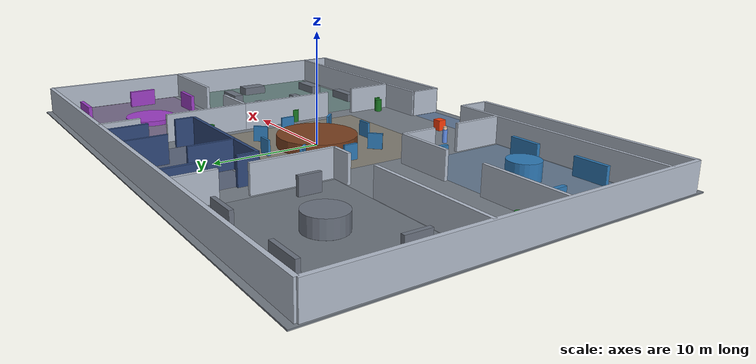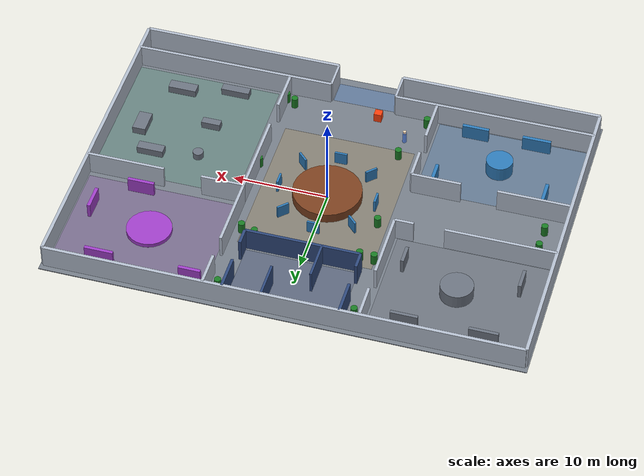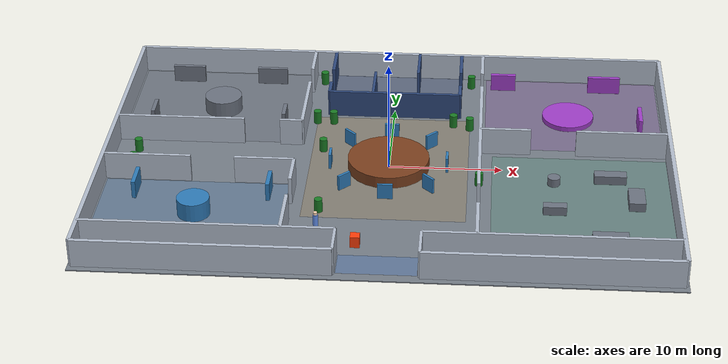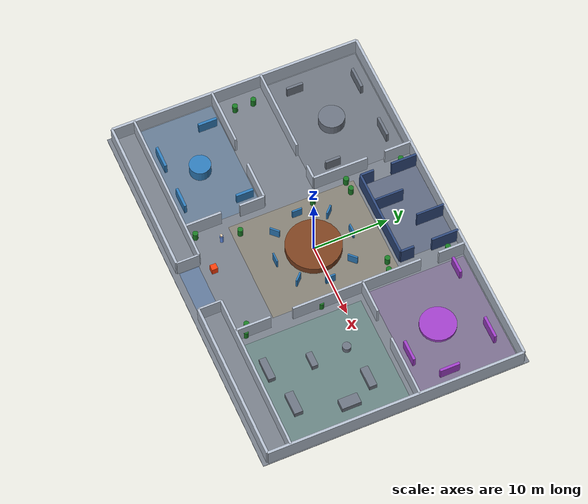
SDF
<?xml version='1.0' encoding='utf-8'?>
<sdf version="1.10">
  <world name="showroom">
    <physics name="showroom_physics" type="ignored">
      <max_step_size>0.005</max_step_size>
      <real_time_factor>1.0</real_time_factor>
      <real_time_update_rate>200</real_time_update_rate>
    </physics>
    <gravity>0 0 -9.8</gravity>
    <plugin filename="gz-sim-physics-system" name="gz::sim::systems::Physics" />
    <plugin filename="gz-sim-user-commands-system" name="gz::sim::systems::UserCommands" />
    <plugin filename="gz-sim-scene-broadcaster-system" name="gz::sim::systems::SceneBroadcaster" />
    <plugin filename="gz-sim-sensors-system" name="gz::sim::systems::Sensors">
      <render_engine>ogre2</render_engine>
    </plugin>
    <scene>
      <ambient>0.52 0.54 0.58 1</ambient>
      <background>0.08 0.10 0.14 1</background>
      <shadows>true</shadows>
    </scene>
    <light name="sun" type="directional">
      <pose>0 0 12 0 0 0</pose>
      <cast_shadows>true</cast_shadows>
      <intensity>0.85</intensity>
      <direction>-0.3 0.2 -0.9</direction>
    </light>
    <model name="showroom_structure">
      <static>true</static>
      <link name="structure">
        <collision name="floor_collision">
          <pose>0.000 0.000 -0.050 0 0 0.000000</pose>
          <geometry>
            <box>
              <size>50.000 35.000 0.100</size>
            </box>
          </geometry>
        </collision>
        <visual name="floor_visual">
          <pose>0.000 0.000 -0.050 0 0 0.000000</pose>
          <geometry>
            <box>
              <size>50.000 35.000 0.100</size>
            </box>
          </geometry>
          <material>
            <ambient>0.30 0.32 0.35 1</ambient>
            <diffuse>0.46 0.49 0.53 1</diffuse>
            <specular>0.08 0.08 0.08 1</specular>
          </material>
          <cast_shadows>false</cast_shadows>
        </visual>
        <visual name="zone_entrance_visual">
          <pose>0.000 -15.300 0.004 0 0 0.000000</pose>
          <geometry>
            <box>
              <size>6.600 2.600 0.006</size>
            </box>
          </geometry>
          <material>
            <ambient>0.20 0.45 0.80 0.28</ambient>
            <diffuse>0.20 0.45 0.80 0.28</diffuse>
            <specular>0.08 0.08 0.08 1</specular>
          </material>
          <cast_shadows>false</cast_shadows>
        </visual>
        <visual name="zone_vision_visual">
          <pose>-16.400 -8.500 0.004 0 0 0.000000</pose>
          <geometry>
            <box>
              <size>16.000 10.100 0.006</size>
            </box>
          </geometry>
          <material>
            <ambient>0.15 0.45 0.75 0.20</ambient>
            <diffuse>0.15 0.45 0.75 0.20</diffuse>
            <specular>0.08 0.08 0.08 1</specular>
          </material>
          <cast_shadows>false</cast_shadows>
        </visual>
        <visual name="zone_robotics_visual">
          <pose>-16.400 10.100 0.004 0 0 0.000000</pose>
          <geometry>
            <box>
              <size>16.000 12.800 0.006</size>
            </box>
          </geometry>
          <material>
            <ambient>0.34 0.36 0.40 0.20</ambient>
            <diffuse>0.34 0.36 0.40 0.20</diffuse>
            <specular>0.08 0.08 0.08 1</specular>
          </material>
          <cast_shadows>false</cast_shadows>
        </visual>
        <visual name="zone_history_visual">
          <pose>0.000 0.000 0.004 0 0 0.000000</pose>
          <geometry>
            <box>
              <size>14.000 17.000 0.006</size>
            </box>
          </geometry>
          <material>
            <ambient>0.76 0.55 0.18 0.16</ambient>
            <diffuse>0.76 0.55 0.18 0.16</diffuse>
            <specular>0.08 0.08 0.08 1</specular>
          </material>
          <cast_shadows>false</cast_shadows>
        </visual>
        <visual name="zone_tunnel_visual">
          <pose>0.000 13.000 0.004 0 0 0.000000</pose>
          <geometry>
            <box>
              <size>11.700 7.300 0.006</size>
            </box>
          </geometry>
          <material>
            <ambient>0.15 0.22 0.42 0.28</ambient>
            <diffuse>0.15 0.22 0.42 0.28</diffuse>
            <specular>0.08 0.08 0.08 1</specular>
          </material>
          <cast_shadows>false</cast_shadows>
        </visual>
        <visual name="zone_dance_visual">
          <pose>16.400 10.100 0.004 0 0 0.000000</pose>
          <geometry>
            <box>
              <size>16.000 12.800 0.006</size>
            </box>
          </geometry>
          <material>
            <ambient>0.55 0.20 0.66 0.20</ambient>
            <diffuse>0.55 0.20 0.66 0.20</diffuse>
            <specular>0.08 0.08 0.08 1</specular>
          </material>
          <cast_shadows>false</cast_shadows>
        </visual>
        <visual name="zone_lounge_visual">
          <pose>16.800 -5.500 0.004 0 0 0.000000</pose>
          <geometry>
            <box>
              <size>15.400 15.600 0.006</size>
            </box>
          </geometry>
          <material>
            <ambient>0.20 0.62 0.43 0.18</ambient>
            <diffuse>0.20 0.62 0.43 0.18</diffuse>
            <specular>0.08 0.08 0.08 1</specular>
          </material>
          <cast_shadows>false</cast_shadows>
        </visual>
        <collision name="outer_north_collision">
          <pose>0.000 16.800 1.250 0 0 0.000000</pose>
          <geometry>
            <box>
              <size>49.400 0.350 2.500</size>
            </box>
          </geometry>
        </collision>
        <visual name="outer_north_visual">
          <pose>0.000 16.800 1.250 0 0 0.000000</pose>
          <geometry>
            <box>
              <size>49.400 0.350 2.500</size>
            </box>
          </geometry>
          <material>
            <ambient>0.52 0.56 0.62 1</ambient>
            <diffuse>0.70 0.74 0.80 1</diffuse>
            <specular>0.08 0.08 0.08 1</specular>
          </material>
          <cast_shadows>true</cast_shadows>
        </visual>
        <collision name="outer_west_collision">
          <pose>-24.700 0.000 1.250 0 0 0.000000</pose>
          <geometry>
            <box>
              <size>0.350 33.600 2.500</size>
            </box>
          </geometry>
        </collision>
        <visual name="outer_west_visual">
          <pose>-24.700 0.000 1.250 0 0 0.000000</pose>
          <geometry>
            <box>
              <size>0.350 33.600 2.500</size>
            </box>
          </geometry>
          <material>
            <ambient>0.52 0.56 0.62 1</ambient>
            <diffuse>0.70 0.74 0.80 1</diffuse>
            <specular>0.08 0.08 0.08 1</specular>
          </material>
          <cast_shadows>true</cast_shadows>
        </visual>
        <collision name="outer_east_collision">
          <pose>24.700 0.000 1.250 0 0 0.000000</pose>
          <geometry>
            <box>
              <size>0.350 33.600 2.500</size>
            </box>
          </geometry>
        </collision>
        <visual name="outer_east_visual">
          <pose>24.700 0.000 1.250 0 0 0.000000</pose>
          <geometry>
            <box>
              <size>0.350 33.600 2.500</size>
            </box>
          </geometry>
          <material>
            <ambient>0.52 0.56 0.62 1</ambient>
            <diffuse>0.70 0.74 0.80 1</diffuse>
            <specular>0.08 0.08 0.08 1</specular>
          </material>
          <cast_shadows>true</cast_shadows>
        </visual>
        <collision name="outer_south_west_collision">
          <pose>-14.100 -16.800 1.250 0 0 0.000000</pose>
          <geometry>
            <box>
              <size>21.200 0.350 2.500</size>
            </box>
          </geometry>
        </collision>
        <visual name="outer_south_west_visual">
          <pose>-14.100 -16.800 1.250 0 0 0.000000</pose>
          <geometry>
            <box>
              <size>21.200 0.350 2.500</size>
            </box>
          </geometry>
          <material>
            <ambient>0.52 0.56 0.62 1</ambient>
            <diffuse>0.70 0.74 0.80 1</diffuse>
            <specular>0.08 0.08 0.08 1</specular>
          </material>
          <cast_shadows>true</cast_shadows>
        </visual>
        <collision name="outer_south_east_collision">
          <pose>14.100 -16.800 1.250 0 0 0.000000</pose>
          <geometry>
            <box>
              <size>21.200 0.350 2.500</size>
            </box>
          </geometry>
        </collision>
        <visual name="outer_south_east_visual">
          <pose>14.100 -16.800 1.250 0 0 0.000000</pose>
          <geometry>
            <box>
              <size>21.200 0.350 2.500</size>
            </box>
          </geometry>
          <material>
            <ambient>0.52 0.56 0.62 1</ambient>
            <diffuse>0.70 0.74 0.80 1</diffuse>
            <specular>0.08 0.08 0.08 1</specular>
          </material>
          <cast_shadows>true</cast_shadows>
        </visual>
        <collision name="entrance_west_collision">
          <pose>-3.500 -15.300 1.250 0 0 0.000000</pose>
          <geometry>
            <box>
              <size>0.250 3.000 2.500</size>
            </box>
          </geometry>
        </collision>
        <visual name="entrance_west_visual">
          <pose>-3.500 -15.300 1.250 0 0 0.000000</pose>
          <geometry>
            <box>
              <size>0.250 3.000 2.500</size>
            </box>
          </geometry>
          <material>
            <ambient>0.52 0.56 0.62 1</ambient>
            <diffuse>0.70 0.74 0.80 1</diffuse>
            <specular>0.08 0.08 0.08 1</specular>
          </material>
          <cast_shadows>true</cast_shadows>
        </visual>
        <collision name="entrance_east_collision">
          <pose>3.500 -15.300 1.250 0 0 0.000000</pose>
          <geometry>
            <box>
              <size>0.250 3.000 2.500</size>
            </box>
          </geometry>
        </collision>
        <visual name="entrance_east_visual">
          <pose>3.500 -15.300 1.250 0 0 0.000000</pose>
          <geometry>
            <box>
              <size>0.250 3.000 2.500</size>
            </box>
          </geometry>
          <material>
            <ambient>0.52 0.56 0.62 1</ambient>
            <diffuse>0.70 0.74 0.80 1</diffuse>
            <specular>0.08 0.08 0.08 1</specular>
          </material>
          <cast_shadows>true</cast_shadows>
        </visual>
        <collision name="entrance_lobby_west_collision">
          <pose>-14.100 -13.800 1.250 0 0 0.000000</pose>
          <geometry>
            <box>
              <size>21.200 0.300 2.500</size>
            </box>
          </geometry>
        </collision>
        <visual name="entrance_lobby_west_visual">
          <pose>-14.100 -13.800 1.250 0 0 0.000000</pose>
          <geometry>
            <box>
              <size>21.200 0.300 2.500</size>
            </box>
          </geometry>
          <material>
            <ambient>0.52 0.56 0.62 1</ambient>
            <diffuse>0.70 0.74 0.80 1</diffuse>
            <specular>0.08 0.08 0.08 1</specular>
          </material>
          <cast_shadows>true</cast_shadows>
        </visual>
        <collision name="entrance_lobby_east_collision">
          <pose>14.100 -13.800 1.250 0 0 0.000000</pose>
          <geometry>
            <box>
              <size>21.200 0.300 2.500</size>
            </box>
          </geometry>
        </collision>
        <visual name="entrance_lobby_east_visual">
          <pose>14.100 -13.800 1.250 0 0 0.000000</pose>
          <geometry>
            <box>
              <size>21.200 0.300 2.500</size>
            </box>
          </geometry>
          <material>
            <ambient>0.52 0.56 0.62 1</ambient>
            <diffuse>0.70 0.74 0.80 1</diffuse>
            <specular>0.08 0.08 0.08 1</specular>
          </material>
          <cast_shadows>true</cast_shadows>
        </visual>
        <collision name="vision_north_west_collision">
          <pose>-20.850 -3.200 1.250 0 0 0.000000</pose>
          <geometry>
            <box>
              <size>7.700 0.300 2.500</size>
            </box>
          </geometry>
        </collision>
        <visual name="vision_north_west_visual">
          <pose>-20.850 -3.200 1.250 0 0 0.000000</pose>
          <geometry>
            <box>
              <size>7.700 0.300 2.500</size>
            </box>
          </geometry>
          <material>
            <ambient>0.52 0.56 0.62 1</ambient>
            <diffuse>0.70 0.74 0.80 1</diffuse>
            <specular>0.08 0.08 0.08 1</specular>
          </material>
          <cast_shadows>true</cast_shadows>
        </visual>
        <collision name="vision_north_east_collision">
          <pose>-10.600 -3.200 1.250 0 0 0.000000</pose>
          <geometry>
            <box>
              <size>5.200 0.300 2.500</size>
            </box>
          </geometry>
        </collision>
        <visual name="vision_north_east_visual">
          <pose>-10.600 -3.200 1.250 0 0 0.000000</pose>
          <geometry>
            <box>
              <size>5.200 0.300 2.500</size>
            </box>
          </geometry>
          <material>
            <ambient>0.52 0.56 0.62 1</ambient>
            <diffuse>0.70 0.74 0.80 1</diffuse>
            <specular>0.08 0.08 0.08 1</specular>
          </material>
          <cast_shadows>true</cast_shadows>
        </visual>
        <collision name="vision_entry_south_collision">
          <pose>-8.000 -11.400 1.250 0 0 0.000000</pose>
          <geometry>
            <box>
              <size>0.300 4.800 2.500</size>
            </box>
          </geometry>
        </collision>
        <visual name="vision_entry_south_visual">
          <pose>-8.000 -11.400 1.250 0 0 0.000000</pose>
          <geometry>
            <box>
              <size>0.300 4.800 2.500</size>
            </box>
          </geometry>
          <material>
            <ambient>0.52 0.56 0.62 1</ambient>
            <diffuse>0.70 0.74 0.80 1</diffuse>
            <specular>0.08 0.08 0.08 1</specular>
          </material>
          <cast_shadows>true</cast_shadows>
        </visual>
        <collision name="vision_entry_north_collision">
          <pose>-8.000 -4.850 1.250 0 0 0.000000</pose>
          <geometry>
            <box>
              <size>0.300 3.300 2.500</size>
            </box>
          </geometry>
        </collision>
        <visual name="vision_entry_north_visual">
          <pose>-8.000 -4.850 1.250 0 0 0.000000</pose>
          <geometry>
            <box>
              <size>0.300 3.300 2.500</size>
            </box>
          </geometry>
          <material>
            <ambient>0.52 0.56 0.62 1</ambient>
            <diffuse>0.70 0.74 0.80 1</diffuse>
            <specular>0.08 0.08 0.08 1</specular>
          </material>
          <cast_shadows>true</cast_shadows>
        </visual>
        <collision name="robotics_south_west_collision">
          <pose>-18.950 3.500 1.250 0 0 0.000000</pose>
          <geometry>
            <box>
              <size>11.500 0.300 2.500</size>
            </box>
          </geometry>
        </collision>
        <visual name="robotics_south_west_visual">
          <pose>-18.950 3.500 1.250 0 0 0.000000</pose>
          <geometry>
            <box>
              <size>11.500 0.300 2.500</size>
            </box>
          </geometry>
          <material>
            <ambient>0.52 0.56 0.62 1</ambient>
            <diffuse>0.70 0.74 0.80 1</diffuse>
            <specular>0.08 0.08 0.08 1</specular>
          </material>
          <cast_shadows>true</cast_shadows>
        </visual>
        <collision name="robotics_south_east_collision">
          <pose>-9.000 3.500 1.250 0 0 0.000000</pose>
          <geometry>
            <box>
              <size>2.000 0.300 2.500</size>
            </box>
          </geometry>
        </collision>
        <visual name="robotics_south_east_visual">
          <pose>-9.000 3.500 1.250 0 0 0.000000</pose>
          <geometry>
            <box>
              <size>2.000 0.300 2.500</size>
            </box>
          </geometry>
          <material>
            <ambient>0.52 0.56 0.62 1</ambient>
            <diffuse>0.70 0.74 0.80 1</diffuse>
            <specular>0.08 0.08 0.08 1</specular>
          </material>
          <cast_shadows>true</cast_shadows>
        </visual>
        <collision name="robotics_east_south_collision">
          <pose>-8.000 7.150 1.250 0 0 0.000000</pose>
          <geometry>
            <box>
              <size>0.300 7.300 2.500</size>
            </box>
          </geometry>
        </collision>
        <visual name="robotics_east_south_visual">
          <pose>-8.000 7.150 1.250 0 0 0.000000</pose>
          <geometry>
            <box>
              <size>0.300 7.300 2.500</size>
            </box>
          </geometry>
          <material>
            <ambient>0.52 0.56 0.62 1</ambient>
            <diffuse>0.70 0.74 0.80 1</diffuse>
            <specular>0.08 0.08 0.08 1</specular>
          </material>
          <cast_shadows>true</cast_shadows>
        </visual>
        <collision name="robotics_east_north_collision">
          <pose>-8.000 15.000 1.250 0 0 0.000000</pose>
          <geometry>
            <box>
              <size>0.300 3.600 2.500</size>
            </box>
          </geometry>
        </collision>
        <visual name="robotics_east_north_visual">
          <pose>-8.000 15.000 1.250 0 0 0.000000</pose>
          <geometry>
            <box>
              <size>0.300 3.600 2.500</size>
            </box>
          </geometry>
          <material>
            <ambient>0.52 0.56 0.62 1</ambient>
            <diffuse>0.70 0.74 0.80 1</diffuse>
            <specular>0.08 0.08 0.08 1</specular>
          </material>
          <cast_shadows>true</cast_shadows>
        </visual>
        <collision name="tunnel_south_collision">
          <pose>0.000 9.000 1.250 0 0 0.000000</pose>
          <geometry>
            <box>
              <size>12.000 0.300 2.500</size>
            </box>
          </geometry>
        </collision>
        <visual name="tunnel_south_visual">
          <pose>0.000 9.000 1.250 0 0 0.000000</pose>
          <geometry>
            <box>
              <size>12.000 0.300 2.500</size>
            </box>
          </geometry>
          <material>
            <ambient>0.12 0.18 0.30 1</ambient>
            <diffuse>0.18 0.28 0.48 1</diffuse>
            <specular>0.08 0.08 0.08 1</specular>
          </material>
          <cast_shadows>true</cast_shadows>
        </visual>
        <collision name="tunnel_west_south_collision">
          <pose>-6.000 9.900 1.250 0 0 0.000000</pose>
          <geometry>
            <box>
              <size>0.300 1.800 2.500</size>
            </box>
          </geometry>
        </collision>
        <visual name="tunnel_west_south_visual">
          <pose>-6.000 9.900 1.250 0 0 0.000000</pose>
          <geometry>
            <box>
              <size>0.300 1.800 2.500</size>
            </box>
          </geometry>
          <material>
            <ambient>0.12 0.18 0.30 1</ambient>
            <diffuse>0.18 0.28 0.48 1</diffuse>
            <specular>0.08 0.08 0.08 1</specular>
          </material>
          <cast_shadows>true</cast_shadows>
        </visual>
        <collision name="tunnel_west_north_collision">
          <pose>-6.000 15.000 1.250 0 0 0.000000</pose>
          <geometry>
            <box>
              <size>0.300 3.600 2.500</size>
            </box>
          </geometry>
        </collision>
        <visual name="tunnel_west_north_visual">
          <pose>-6.000 15.000 1.250 0 0 0.000000</pose>
          <geometry>
            <box>
              <size>0.300 3.600 2.500</size>
            </box>
          </geometry>
          <material>
            <ambient>0.12 0.18 0.30 1</ambient>
            <diffuse>0.18 0.28 0.48 1</diffuse>
            <specular>0.08 0.08 0.08 1</specular>
          </material>
          <cast_shadows>true</cast_shadows>
        </visual>
        <collision name="tunnel_east_south_collision">
          <pose>6.000 9.900 1.250 0 0 0.000000</pose>
          <geometry>
            <box>
              <size>0.300 1.800 2.500</size>
            </box>
          </geometry>
        </collision>
        <visual name="tunnel_east_south_visual">
          <pose>6.000 9.900 1.250 0 0 0.000000</pose>
          <geometry>
            <box>
              <size>0.300 1.800 2.500</size>
            </box>
          </geometry>
          <material>
            <ambient>0.12 0.18 0.30 1</ambient>
            <diffuse>0.18 0.28 0.48 1</diffuse>
            <specular>0.08 0.08 0.08 1</specular>
          </material>
          <cast_shadows>true</cast_shadows>
        </visual>
        <collision name="tunnel_east_north_collision">
          <pose>6.000 15.000 1.250 0 0 0.000000</pose>
          <geometry>
            <box>
              <size>0.300 3.600 2.500</size>
            </box>
          </geometry>
        </collision>
        <visual name="tunnel_east_north_visual">
          <pose>6.000 15.000 1.250 0 0 0.000000</pose>
          <geometry>
            <box>
              <size>0.300 3.600 2.500</size>
            </box>
          </geometry>
          <material>
            <ambient>0.12 0.18 0.30 1</ambient>
            <diffuse>0.18 0.28 0.48 1</diffuse>
            <specular>0.08 0.08 0.08 1</specular>
          </material>
          <cast_shadows>true</cast_shadows>
        </visual>
        <collision name="tunnel_baffle_west_collision">
          <pose>-2.000 11.000 1.250 0 0 0.000000</pose>
          <geometry>
            <box>
              <size>0.250 4.000 2.500</size>
            </box>
          </geometry>
        </collision>
        <visual name="tunnel_baffle_west_visual">
          <pose>-2.000 11.000 1.250 0 0 0.000000</pose>
          <geometry>
            <box>
              <size>0.250 4.000 2.500</size>
            </box>
          </geometry>
          <material>
            <ambient>0.12 0.18 0.30 1</ambient>
            <diffuse>0.18 0.28 0.48 1</diffuse>
            <specular>0.08 0.08 0.08 1</specular>
          </material>
          <cast_shadows>true</cast_shadows>
        </visual>
        <collision name="tunnel_baffle_east_collision">
          <pose>2.000 14.900 1.250 0 0 0.000000</pose>
          <geometry>
            <box>
              <size>0.250 3.800 2.500</size>
            </box>
          </geometry>
        </collision>
        <visual name="tunnel_baffle_east_visual">
          <pose>2.000 14.900 1.250 0 0 0.000000</pose>
          <geometry>
            <box>
              <size>0.250 3.800 2.500</size>
            </box>
          </geometry>
          <material>
            <ambient>0.12 0.18 0.30 1</ambient>
            <diffuse>0.18 0.28 0.48 1</diffuse>
            <specular>0.08 0.08 0.08 1</specular>
          </material>
          <cast_shadows>true</cast_shadows>
        </visual>
        <collision name="dance_lounge_west_collision">
          <pose>10.250 3.000 1.250 0 0 0.000000</pose>
          <geometry>
            <box>
              <size>4.500 0.300 2.500</size>
            </box>
          </geometry>
        </collision>
        <visual name="dance_lounge_west_visual">
          <pose>10.250 3.000 1.250 0 0 0.000000</pose>
          <geometry>
            <box>
              <size>4.500 0.300 2.500</size>
            </box>
          </geometry>
          <material>
            <ambient>0.52 0.56 0.62 1</ambient>
            <diffuse>0.70 0.74 0.80 1</diffuse>
            <specular>0.08 0.08 0.08 1</specular>
          </material>
          <cast_shadows>true</cast_shadows>
        </visual>
        <collision name="dance_lounge_east_collision">
          <pose>20.600 3.000 1.250 0 0 0.000000</pose>
          <geometry>
            <box>
              <size>8.200 0.300 2.500</size>
            </box>
          </geometry>
        </collision>
        <visual name="dance_lounge_east_visual">
          <pose>20.600 3.000 1.250 0 0 0.000000</pose>
          <geometry>
            <box>
              <size>8.200 0.300 2.500</size>
            </box>
          </geometry>
          <material>
            <ambient>0.52 0.56 0.62 1</ambient>
            <diffuse>0.70 0.74 0.80 1</diffuse>
            <specular>0.08 0.08 0.08 1</specular>
          </material>
          <cast_shadows>true</cast_shadows>
        </visual>
        <collision name="dance_west_south_collision">
          <pose>8.000 6.900 1.250 0 0 0.000000</pose>
          <geometry>
            <box>
              <size>0.300 7.800 2.500</size>
            </box>
          </geometry>
        </collision>
        <visual name="dance_west_south_visual">
          <pose>8.000 6.900 1.250 0 0 0.000000</pose>
          <geometry>
            <box>
              <size>0.300 7.800 2.500</size>
            </box>
          </geometry>
          <material>
            <ambient>0.52 0.56 0.62 1</ambient>
            <diffuse>0.70 0.74 0.80 1</diffuse>
            <specular>0.08 0.08 0.08 1</specular>
          </material>
          <cast_shadows>true</cast_shadows>
        </visual>
        <collision name="dance_west_north_collision">
          <pose>8.000 15.000 1.250 0 0 0.000000</pose>
          <geometry>
            <box>
              <size>0.300 3.600 2.500</size>
            </box>
          </geometry>
        </collision>
        <visual name="dance_west_north_visual">
          <pose>8.000 15.000 1.250 0 0 0.000000</pose>
          <geometry>
            <box>
              <size>0.300 3.600 2.500</size>
            </box>
          </geometry>
          <material>
            <ambient>0.52 0.56 0.62 1</ambient>
            <diffuse>0.70 0.74 0.80 1</diffuse>
            <specular>0.08 0.08 0.08 1</specular>
          </material>
          <cast_shadows>true</cast_shadows>
        </visual>
        <collision name="lounge_west_south_collision">
          <pose>8.000 -11.500 1.250 0 0 0.000000</pose>
          <geometry>
            <box>
              <size>0.300 4.600 2.500</size>
            </box>
          </geometry>
        </collision>
        <visual name="lounge_west_south_visual">
          <pose>8.000 -11.500 1.250 0 0 0.000000</pose>
          <geometry>
            <box>
              <size>0.300 4.600 2.500</size>
            </box>
          </geometry>
          <material>
            <ambient>0.52 0.56 0.62 1</ambient>
            <diffuse>0.70 0.74 0.80 1</diffuse>
            <specular>0.08 0.08 0.08 1</specular>
          </material>
          <cast_shadows>true</cast_shadows>
        </visual>
        <collision name="lounge_west_north_collision">
          <pose>8.000 -1.650 1.250 0 0 0.000000</pose>
          <geometry>
            <box>
              <size>0.300 9.300 2.500</size>
            </box>
          </geometry>
        </collision>
        <visual name="lounge_west_north_visual">
          <pose>8.000 -1.650 1.250 0 0 0.000000</pose>
          <geometry>
            <box>
              <size>0.300 9.300 2.500</size>
            </box>
          </geometry>
          <material>
            <ambient>0.52 0.56 0.62 1</ambient>
            <diffuse>0.70 0.74 0.80 1</diffuse>
            <specular>0.08 0.08 0.08 1</specular>
          </material>
          <cast_shadows>true</cast_shadows>
        </visual>
        <collision name="coffee_bar_collision">
          <pose>0.000 0.000 0.525 0 0 0</pose>
          <geometry>
            <cylinder>
              <radius>3.600</radius>
              <length>1.050</length>
            </cylinder>
          </geometry>
        </collision>
        <visual name="coffee_bar_visual">
          <pose>0.000 0.000 0.525 0 0 0</pose>
          <geometry>
            <cylinder>
              <radius>3.600</radius>
              <length>1.050</length>
            </cylinder>
          </geometry>
          <material>
            <ambient>0.23 0.12 0.07 1</ambient>
            <diffuse>0.48 0.25 0.12 1</diffuse>
            <specular>0.08 0.08 0.08 1</specular>
          </material>
        </visual>
        <collision name="vision_globe_collision">
          <pose>-16.000 -8.500 0.800 0 0 0</pose>
          <geometry>
            <cylinder>
              <radius>1.400</radius>
              <length>1.600</length>
            </cylinder>
          </geometry>
        </collision>
        <visual name="vision_globe_visual">
          <pose>-16.000 -8.500 0.800 0 0 0</pose>
          <geometry>
            <cylinder>
              <radius>1.400</radius>
              <length>1.600</length>
            </cylinder>
          </geometry>
          <material>
            <ambient>0.12 0.30 0.46 1</ambient>
            <diffuse>0.18 0.48 0.72 1</diffuse>
            <specular>0.08 0.08 0.08 1</specular>
          </material>
        </visual>
        <collision name="robotics_display_collision">
          <pose>-16.000 9.500 0.725 0 0 0</pose>
          <geometry>
            <cylinder>
              <radius>1.700</radius>
              <length>1.450</length>
            </cylinder>
          </geometry>
        </collision>
        <visual name="robotics_display_visual">
          <pose>-16.000 9.500 0.725 0 0 0</pose>
          <geometry>
            <cylinder>
              <radius>1.700</radius>
              <length>1.450</length>
            </cylinder>
          </geometry>
          <material>
            <ambient>0.24 0.25 0.28 1</ambient>
            <diffuse>0.42 0.45 0.50 1</diffuse>
            <specular>0.08 0.08 0.08 1</specular>
          </material>
        </visual>
        <collision name="dance_stage_collision">
          <pose>16.000 9.500 0.225 0 0 0</pose>
          <geometry>
            <cylinder>
              <radius>2.350</radius>
              <length>0.450</length>
            </cylinder>
          </geometry>
        </collision>
        <visual name="dance_stage_visual">
          <pose>16.000 9.500 0.225 0 0 0</pose>
          <geometry>
            <cylinder>
              <radius>2.350</radius>
              <length>0.450</length>
            </cylinder>
          </geometry>
          <material>
            <ambient>0.34 0.12 0.46 1</ambient>
            <diffuse>0.62 0.24 0.78 1</diffuse>
            <specular>0.08 0.08 0.08 1</specular>
          </material>
        </visual>
        <collision name="history_north_collision">
          <pose>0.000 5.150 0.700 0 0 0.000000</pose>
          <geometry>
            <box>
              <size>1.300 0.220 1.400</size>
            </box>
          </geometry>
        </collision>
        <visual name="history_north_visual">
          <pose>0.000 5.150 0.700 0 0 0.000000</pose>
          <geometry>
            <box>
              <size>1.300 0.220 1.400</size>
            </box>
          </geometry>
          <material>
            <ambient>0.12 0.30 0.46 1</ambient>
            <diffuse>0.18 0.48 0.72 1</diffuse>
            <specular>0.08 0.08 0.08 1</specular>
          </material>
          <cast_shadows>true</cast_shadows>
        </visual>
        <collision name="history_north_east_collision">
          <pose>3.650 3.650 0.700 0 0 0.785398</pose>
          <geometry>
            <box>
              <size>1.300 0.220 1.400</size>
            </box>
          </geometry>
        </collision>
        <visual name="history_north_east_visual">
          <pose>3.650 3.650 0.700 0 0 0.785398</pose>
          <geometry>
            <box>
              <size>1.300 0.220 1.400</size>
            </box>
          </geometry>
          <material>
            <ambient>0.12 0.30 0.46 1</ambient>
            <diffuse>0.18 0.48 0.72 1</diffuse>
            <specular>0.08 0.08 0.08 1</specular>
          </material>
          <cast_shadows>true</cast_shadows>
        </visual>
        <collision name="history_east_collision">
          <pose>5.150 0.000 0.700 0 0 1.570796</pose>
          <geometry>
            <box>
              <size>1.300 0.220 1.400</size>
            </box>
          </geometry>
        </collision>
        <visual name="history_east_visual">
          <pose>5.150 0.000 0.700 0 0 1.570796</pose>
          <geometry>
            <box>
              <size>1.300 0.220 1.400</size>
            </box>
          </geometry>
          <material>
            <ambient>0.12 0.30 0.46 1</ambient>
            <diffuse>0.18 0.48 0.72 1</diffuse>
            <specular>0.08 0.08 0.08 1</specular>
          </material>
          <cast_shadows>true</cast_shadows>
        </visual>
        <collision name="history_south_east_collision">
          <pose>3.650 -3.650 0.700 0 0 2.356194</pose>
          <geometry>
            <box>
              <size>1.300 0.220 1.400</size>
            </box>
          </geometry>
        </collision>
        <visual name="history_south_east_visual">
          <pose>3.650 -3.650 0.700 0 0 2.356194</pose>
          <geometry>
            <box>
              <size>1.300 0.220 1.400</size>
            </box>
          </geometry>
          <material>
            <ambient>0.12 0.30 0.46 1</ambient>
            <diffuse>0.18 0.48 0.72 1</diffuse>
            <specular>0.08 0.08 0.08 1</specular>
          </material>
          <cast_shadows>true</cast_shadows>
        </visual>
        <collision name="history_south_collision">
          <pose>0.000 -5.150 0.700 0 0 0.000000</pose>
          <geometry>
            <box>
              <size>1.300 0.220 1.400</size>
            </box>
          </geometry>
        </collision>
        <visual name="history_south_visual">
          <pose>0.000 -5.150 0.700 0 0 0.000000</pose>
          <geometry>
            <box>
              <size>1.300 0.220 1.400</size>
            </box>
          </geometry>
          <material>
            <ambient>0.12 0.30 0.46 1</ambient>
            <diffuse>0.18 0.48 0.72 1</diffuse>
            <specular>0.08 0.08 0.08 1</specular>
          </material>
          <cast_shadows>true</cast_shadows>
        </visual>
        <collision name="history_south_west_collision">
          <pose>-3.650 -3.650 0.700 0 0 0.785398</pose>
          <geometry>
            <box>
              <size>1.300 0.220 1.400</size>
            </box>
          </geometry>
        </collision>
        <visual name="history_south_west_visual">
          <pose>-3.650 -3.650 0.700 0 0 0.785398</pose>
          <geometry>
            <box>
              <size>1.300 0.220 1.400</size>
            </box>
          </geometry>
          <material>
            <ambient>0.12 0.30 0.46 1</ambient>
            <diffuse>0.18 0.48 0.72 1</diffuse>
            <specular>0.08 0.08 0.08 1</specular>
          </material>
          <cast_shadows>true</cast_shadows>
        </visual>
        <collision name="history_west_collision">
          <pose>-5.150 0.000 0.700 0 0 1.570796</pose>
          <geometry>
            <box>
              <size>1.300 0.220 1.400</size>
            </box>
          </geometry>
        </collision>
        <visual name="history_west_visual">
          <pose>-5.150 0.000 0.700 0 0 1.570796</pose>
          <geometry>
            <box>
              <size>1.300 0.220 1.400</size>
            </box>
          </geometry>
          <material>
            <ambient>0.12 0.30 0.46 1</ambient>
            <diffuse>0.18 0.48 0.72 1</diffuse>
            <specular>0.08 0.08 0.08 1</specular>
          </material>
          <cast_shadows>true</cast_shadows>
        </visual>
        <collision name="history_north_west_collision">
          <pose>-3.650 3.650 0.700 0 0 2.356194</pose>
          <geometry>
            <box>
              <size>1.300 0.220 1.400</size>
            </box>
          </geometry>
        </collision>
        <visual name="history_north_west_visual">
          <pose>-3.650 3.650 0.700 0 0 2.356194</pose>
          <geometry>
            <box>
              <size>1.300 0.220 1.400</size>
            </box>
          </geometry>
          <material>
            <ambient>0.12 0.30 0.46 1</ambient>
            <diffuse>0.18 0.48 0.72 1</diffuse>
            <specular>0.08 0.08 0.08 1</specular>
          </material>
          <cast_shadows>true</cast_shadows>
        </visual>
        <collision name="vision_west_collision">
          <pose>-21.500 -5.200 0.800 0 0 1.570796</pose>
          <geometry>
            <box>
              <size>2.500 0.350 1.600</size>
            </box>
          </geometry>
        </collision>
        <visual name="vision_west_visual">
          <pose>-21.500 -5.200 0.800 0 0 1.570796</pose>
          <geometry>
            <box>
              <size>2.500 0.350 1.600</size>
            </box>
          </geometry>
          <material>
            <ambient>0.12 0.30 0.46 1</ambient>
            <diffuse>0.18 0.48 0.72 1</diffuse>
            <specular>0.08 0.08 0.08 1</specular>
          </material>
          <cast_shadows>true</cast_shadows>
        </visual>
        <collision name="vision_south_west_collision">
          <pose>-19.000 -12.500 0.800 0 0 0.000000</pose>
          <geometry>
            <box>
              <size>3.000 0.350 1.600</size>
            </box>
          </geometry>
        </collision>
        <visual name="vision_south_west_visual">
          <pose>-19.000 -12.500 0.800 0 0 0.000000</pose>
          <geometry>
            <box>
              <size>3.000 0.350 1.600</size>
            </box>
          </geometry>
          <material>
            <ambient>0.12 0.30 0.46 1</ambient>
            <diffuse>0.18 0.48 0.72 1</diffuse>
            <specular>0.08 0.08 0.08 1</specular>
          </material>
          <cast_shadows>true</cast_shadows>
        </visual>
        <collision name="vision_south_east_collision">
          <pose>-12.500 -12.500 0.800 0 0 0.000000</pose>
          <geometry>
            <box>
              <size>2.800 0.350 1.600</size>
            </box>
          </geometry>
        </collision>
        <visual name="vision_south_east_visual">
          <pose>-12.500 -12.500 0.800 0 0 0.000000</pose>
          <geometry>
            <box>
              <size>2.800 0.350 1.600</size>
            </box>
          </geometry>
          <material>
            <ambient>0.12 0.30 0.46 1</ambient>
            <diffuse>0.18 0.48 0.72 1</diffuse>
            <specular>0.08 0.08 0.08 1</specular>
          </material>
          <cast_shadows>true</cast_shadows>
        </visual>
        <collision name="vision_east_collision">
          <pose>-10.000 -5.000 0.800 0 0 1.570796</pose>
          <geometry>
            <box>
              <size>2.300 0.350 1.600</size>
            </box>
          </geometry>
        </collision>
        <visual name="vision_east_visual">
          <pose>-10.000 -5.000 0.800 0 0 1.570796</pose>
          <geometry>
            <box>
              <size>2.300 0.350 1.600</size>
            </box>
          </geometry>
          <material>
            <ambient>0.12 0.30 0.46 1</ambient>
            <diffuse>0.18 0.48 0.72 1</diffuse>
            <specular>0.08 0.08 0.08 1</specular>
          </material>
          <cast_shadows>true</cast_shadows>
        </visual>
        <collision name="robotics_west_collision">
          <pose>-22.000 7.000 0.800 0 0 1.570796</pose>
          <geometry>
            <box>
              <size>2.200 0.350 1.600</size>
            </box>
          </geometry>
        </collision>
        <visual name="robotics_west_visual">
          <pose>-22.000 7.000 0.800 0 0 1.570796</pose>
          <geometry>
            <box>
              <size>2.200 0.350 1.600</size>
            </box>
          </geometry>
          <material>
            <ambient>0.24 0.25 0.28 1</ambient>
            <diffuse>0.42 0.45 0.50 1</diffuse>
            <specular>0.08 0.08 0.08 1</specular>
          </material>
          <cast_shadows>true</cast_shadows>
        </visual>
        <collision name="robotics_north_west_collision">
          <pose>-20.000 14.800 0.800 0 0 0.000000</pose>
          <geometry>
            <box>
              <size>3.000 0.350 1.600</size>
            </box>
          </geometry>
        </collision>
        <visual name="robotics_north_west_visual">
          <pose>-20.000 14.800 0.800 0 0 0.000000</pose>
          <geometry>
            <box>
              <size>3.000 0.350 1.600</size>
            </box>
          </geometry>
          <material>
            <ambient>0.24 0.25 0.28 1</ambient>
            <diffuse>0.42 0.45 0.50 1</diffuse>
            <specular>0.08 0.08 0.08 1</specular>
          </material>
          <cast_shadows>true</cast_shadows>
        </visual>
        <collision name="robotics_north_east_collision">
          <pose>-12.000 14.800 0.800 0 0 0.000000</pose>
          <geometry>
            <box>
              <size>2.800 0.350 1.600</size>
            </box>
          </geometry>
        </collision>
        <visual name="robotics_north_east_visual">
          <pose>-12.000 14.800 0.800 0 0 0.000000</pose>
          <geometry>
            <box>
              <size>2.800 0.350 1.600</size>
            </box>
          </geometry>
          <material>
            <ambient>0.24 0.25 0.28 1</ambient>
            <diffuse>0.42 0.45 0.50 1</diffuse>
            <specular>0.08 0.08 0.08 1</specular>
          </material>
          <cast_shadows>true</cast_shadows>
        </visual>
        <collision name="robotics_east_collision">
          <pose>-10.000 7.000 0.800 0 0 1.570796</pose>
          <geometry>
            <box>
              <size>2.000 0.350 1.600</size>
            </box>
          </geometry>
        </collision>
        <visual name="robotics_east_visual">
          <pose>-10.000 7.000 0.800 0 0 1.570796</pose>
          <geometry>
            <box>
              <size>2.000 0.350 1.600</size>
            </box>
          </geometry>
          <material>
            <ambient>0.24 0.25 0.28 1</ambient>
            <diffuse>0.42 0.45 0.50 1</diffuse>
            <specular>0.08 0.08 0.08 1</specular>
          </material>
          <cast_shadows>true</cast_shadows>
        </visual>
        <collision name="dance_north_west_collision">
          <pose>10.000 14.800 0.800 0 0 0.000000</pose>
          <geometry>
            <box>
              <size>2.300 0.350 1.600</size>
            </box>
          </geometry>
        </collision>
        <visual name="dance_north_west_visual">
          <pose>10.000 14.800 0.800 0 0 0.000000</pose>
          <geometry>
            <box>
              <size>2.300 0.350 1.600</size>
            </box>
          </geometry>
          <material>
            <ambient>0.34 0.12 0.46 1</ambient>
            <diffuse>0.62 0.24 0.78 1</diffuse>
            <specular>0.08 0.08 0.08 1</specular>
          </material>
          <cast_shadows>true</cast_shadows>
        </visual>
        <collision name="dance_north_east_collision">
          <pose>19.500 14.800 0.800 0 0 0.000000</pose>
          <geometry>
            <box>
              <size>3.000 0.350 1.600</size>
            </box>
          </geometry>
        </collision>
        <visual name="dance_north_east_visual">
          <pose>19.500 14.800 0.800 0 0 0.000000</pose>
          <geometry>
            <box>
              <size>3.000 0.350 1.600</size>
            </box>
          </geometry>
          <material>
            <ambient>0.34 0.12 0.46 1</ambient>
            <diffuse>0.62 0.24 0.78 1</diffuse>
            <specular>0.08 0.08 0.08 1</specular>
          </material>
          <cast_shadows>true</cast_shadows>
        </visual>
        <collision name="dance_east_collision">
          <pose>22.500 8.000 0.800 0 0 1.570796</pose>
          <geometry>
            <box>
              <size>2.600 0.350 1.600</size>
            </box>
          </geometry>
        </collision>
        <visual name="dance_east_visual">
          <pose>22.500 8.000 0.800 0 0 1.570796</pose>
          <geometry>
            <box>
              <size>2.600 0.350 1.600</size>
            </box>
          </geometry>
          <material>
            <ambient>0.34 0.12 0.46 1</ambient>
            <diffuse>0.62 0.24 0.78 1</diffuse>
            <specular>0.08 0.08 0.08 1</specular>
          </material>
          <cast_shadows>true</cast_shadows>
        </visual>
        <collision name="dance_south_collision">
          <pose>18.500 4.500 0.800 0 0 0.000000</pose>
          <geometry>
            <box>
              <size>2.800 0.350 1.600</size>
            </box>
          </geometry>
        </collision>
        <visual name="dance_south_visual">
          <pose>18.500 4.500 0.800 0 0 0.000000</pose>
          <geometry>
            <box>
              <size>2.800 0.350 1.600</size>
            </box>
          </geometry>
          <material>
            <ambient>0.34 0.12 0.46 1</ambient>
            <diffuse>0.62 0.24 0.78 1</diffuse>
            <specular>0.08 0.08 0.08 1</specular>
          </material>
          <cast_shadows>true</cast_shadows>
        </visual>
        <collision name="lounge_desk_collision">
          <pose>19.400 -1.300 0.400 0 0 0.000000</pose>
          <geometry>
            <box>
              <size>2.800 1.000 0.800</size>
            </box>
          </geometry>
        </collision>
        <visual name="lounge_desk_visual">
          <pose>19.400 -1.300 0.400 0 0 0.000000</pose>
          <geometry>
            <box>
              <size>2.800 1.000 0.800</size>
            </box>
          </geometry>
          <material>
            <ambient>0.25 0.27 0.30 1</ambient>
            <diffuse>0.42 0.45 0.50 1</diffuse>
            <specular>0.08 0.08 0.08 1</specular>
          </material>
          <cast_shadows>true</cast_shadows>
        </visual>
        <collision name="lounge_east_sofa_collision">
          <pose>21.500 -4.750 0.400 0 0 0.000000</pose>
          <geometry>
            <box>
              <size>1.400 2.500 0.800</size>
            </box>
          </geometry>
        </collision>
        <visual name="lounge_east_sofa_visual">
          <pose>21.500 -4.750 0.400 0 0 0.000000</pose>
          <geometry>
            <box>
              <size>1.400 2.500 0.800</size>
            </box>
          </geometry>
          <material>
            <ambient>0.25 0.27 0.30 1</ambient>
            <diffuse>0.42 0.45 0.50 1</diffuse>
            <specular>0.08 0.08 0.08 1</specular>
          </material>
          <cast_shadows>true</cast_shadows>
        </visual>
        <collision name="lounge_south_sofa_collision">
          <pose>19.000 -10.950 0.400 0 0 0.000000</pose>
          <geometry>
            <box>
              <size>3.000 1.100 0.800</size>
            </box>
          </geometry>
        </collision>
        <visual name="lounge_south_sofa_visual">
          <pose>19.000 -10.950 0.400 0 0 0.000000</pose>
          <geometry>
            <box>
              <size>3.000 1.100 0.800</size>
            </box>
          </geometry>
          <material>
            <ambient>0.25 0.27 0.30 1</ambient>
            <diffuse>0.42 0.45 0.50 1</diffuse>
            <specular>0.08 0.08 0.08 1</specular>
          </material>
          <cast_shadows>true</cast_shadows>
        </visual>
        <collision name="lounge_south_table_collision">
          <pose>13.500 -12.050 0.400 0 0 0.000000</pose>
          <geometry>
            <box>
              <size>3.000 0.900 0.800</size>
            </box>
          </geometry>
        </collision>
        <visual name="lounge_south_table_visual">
          <pose>13.500 -12.050 0.400 0 0 0.000000</pose>
          <geometry>
            <box>
              <size>3.000 0.900 0.800</size>
            </box>
          </geometry>
          <material>
            <ambient>0.25 0.27 0.30 1</ambient>
            <diffuse>0.42 0.45 0.50 1</diffuse>
            <specular>0.08 0.08 0.08 1</specular>
          </material>
          <cast_shadows>true</cast_shadows>
        </visual>
        <collision name="lounge_center_bench_collision">
          <pose>14.500 -6.600 0.400 0 0 0.000000</pose>
          <geometry>
            <box>
              <size>2.000 0.800 0.800</size>
            </box>
          </geometry>
        </collision>
        <visual name="lounge_center_bench_visual">
          <pose>14.500 -6.600 0.400 0 0 0.000000</pose>
          <geometry>
            <box>
              <size>2.000 0.800 0.800</size>
            </box>
          </geometry>
          <material>
            <ambient>0.25 0.27 0.30 1</ambient>
            <diffuse>0.42 0.45 0.50 1</diffuse>
            <specular>0.08 0.08 0.08 1</specular>
          </material>
          <cast_shadows>true</cast_shadows>
        </visual>
        <collision name="lounge_round_table_collision">
          <pose>14.500 -2.000 0.375 0 0 0</pose>
          <geometry>
            <cylinder>
              <radius>0.550</radius>
              <length>0.750</length>
            </cylinder>
          </geometry>
        </collision>
        <visual name="lounge_round_table_visual">
          <pose>14.500 -2.000 0.375 0 0 0</pose>
          <geometry>
            <cylinder>
              <radius>0.550</radius>
              <length>0.750</length>
            </cylinder>
          </geometry>
          <material>
            <ambient>0.25 0.27 0.30 1</ambient>
            <diffuse>0.42 0.45 0.50 1</diffuse>
            <specular>0.08 0.08 0.08 1</specular>
          </material>
        </visual>
        <collision name="plant_01_collision">
          <pose>-7.200 -12.800 0.600 0 0 0</pose>
          <geometry>
            <cylinder>
              <radius>0.350</radius>
              <length>1.200</length>
            </cylinder>
          </geometry>
        </collision>
        <visual name="plant_01_visual">
          <pose>-7.200 -12.800 0.600 0 0 0</pose>
          <geometry>
            <cylinder>
              <radius>0.350</radius>
              <length>1.200</length>
            </cylinder>
          </geometry>
          <material>
            <ambient>0.06 0.25 0.08 1</ambient>
            <diffuse>0.10 0.48 0.14 1</diffuse>
            <specular>0.08 0.08 0.08 1</specular>
          </material>
        </visual>
        <collision name="plant_02_collision">
          <pose>-6.000 2.500 0.600 0 0 0</pose>
          <geometry>
            <cylinder>
              <radius>0.350</radius>
              <length>1.200</length>
            </cylinder>
          </geometry>
        </collision>
        <visual name="plant_02_visual">
          <pose>-6.000 2.500 0.600 0 0 0</pose>
          <geometry>
            <cylinder>
              <radius>0.350</radius>
              <length>1.200</length>
            </cylinder>
          </geometry>
          <material>
            <ambient>0.06 0.25 0.08 1</ambient>
            <diffuse>0.10 0.48 0.14 1</diffuse>
            <specular>0.08 0.08 0.08 1</specular>
          </material>
        </visual>
        <collision name="plant_03_collision">
          <pose>-7.000 7.500 0.600 0 0 0</pose>
          <geometry>
            <cylinder>
              <radius>0.350</radius>
              <length>1.200</length>
            </cylinder>
          </geometry>
        </collision>
        <visual name="plant_03_visual">
          <pose>-7.000 7.500 0.600 0 0 0</pose>
          <geometry>
            <cylinder>
              <radius>0.350</radius>
              <length>1.200</length>
            </cylinder>
          </geometry>
          <material>
            <ambient>0.06 0.25 0.08 1</ambient>
            <diffuse>0.10 0.48 0.14 1</diffuse>
            <specular>0.08 0.08 0.08 1</specular>
          </material>
        </visual>
        <collision name="plant_04_collision">
          <pose>-7.000 15.000 0.600 0 0 0</pose>
          <geometry>
            <cylinder>
              <radius>0.350</radius>
              <length>1.200</length>
            </cylinder>
          </geometry>
        </collision>
        <visual name="plant_04_visual">
          <pose>-7.000 15.000 0.600 0 0 0</pose>
          <geometry>
            <cylinder>
              <radius>0.350</radius>
              <length>1.200</length>
            </cylinder>
          </geometry>
          <material>
            <ambient>0.06 0.25 0.08 1</ambient>
            <diffuse>0.10 0.48 0.14 1</diffuse>
            <specular>0.08 0.08 0.08 1</specular>
          </material>
        </visual>
        <collision name="plant_05_collision">
          <pose>7.000 15.000 0.600 0 0 0</pose>
          <geometry>
            <cylinder>
              <radius>0.350</radius>
              <length>1.200</length>
            </cylinder>
          </geometry>
        </collision>
        <visual name="plant_05_visual">
          <pose>7.000 15.000 0.600 0 0 0</pose>
          <geometry>
            <cylinder>
              <radius>0.350</radius>
              <length>1.200</length>
            </cylinder>
          </geometry>
          <material>
            <ambient>0.06 0.25 0.08 1</ambient>
            <diffuse>0.10 0.48 0.14 1</diffuse>
            <specular>0.08 0.08 0.08 1</specular>
          </material>
        </visual>
        <collision name="plant_06_collision">
          <pose>7.000 7.000 0.600 0 0 0</pose>
          <geometry>
            <cylinder>
              <radius>0.350</radius>
              <length>1.200</length>
            </cylinder>
          </geometry>
        </collision>
        <visual name="plant_06_visual">
          <pose>7.000 7.000 0.600 0 0 0</pose>
          <geometry>
            <cylinder>
              <radius>0.350</radius>
              <length>1.200</length>
            </cylinder>
          </geometry>
          <material>
            <ambient>0.06 0.25 0.08 1</ambient>
            <diffuse>0.10 0.48 0.14 1</diffuse>
            <specular>0.08 0.08 0.08 1</specular>
          </material>
        </visual>
        <collision name="plant_07_collision">
          <pose>8.000 -12.500 0.600 0 0 0</pose>
          <geometry>
            <cylinder>
              <radius>0.350</radius>
              <length>1.200</length>
            </cylinder>
          </geometry>
        </collision>
        <visual name="plant_07_visual">
          <pose>8.000 -12.500 0.600 0 0 0</pose>
          <geometry>
            <cylinder>
              <radius>0.350</radius>
              <length>1.200</length>
            </cylinder>
          </geometry>
          <material>
            <ambient>0.06 0.25 0.08 1</ambient>
            <diffuse>0.10 0.48 0.14 1</diffuse>
            <specular>0.08 0.08 0.08 1</specular>
          </material>
        </visual>
        <collision name="plant_08_collision">
          <pose>8.000 -2.500 0.600 0 0 0</pose>
          <geometry>
            <cylinder>
              <radius>0.350</radius>
              <length>1.200</length>
            </cylinder>
          </geometry>
        </collision>
        <visual name="plant_08_visual">
          <pose>8.000 -2.500 0.600 0 0 0</pose>
          <geometry>
            <cylinder>
              <radius>0.350</radius>
              <length>1.200</length>
            </cylinder>
          </geometry>
          <material>
            <ambient>0.06 0.25 0.08 1</ambient>
            <diffuse>0.10 0.48 0.14 1</diffuse>
            <specular>0.08 0.08 0.08 1</specular>
          </material>
        </visual>
        <collision name="plant_09_collision">
          <pose>-22.500 -1.000 0.600 0 0 0</pose>
          <geometry>
            <cylinder>
              <radius>0.350</radius>
              <length>1.200</length>
            </cylinder>
          </geometry>
        </collision>
        <visual name="plant_09_visual">
          <pose>-22.500 -1.000 0.600 0 0 0</pose>
          <geometry>
            <cylinder>
              <radius>0.350</radius>
              <length>1.200</length>
            </cylinder>
          </geometry>
          <material>
            <ambient>0.06 0.25 0.08 1</ambient>
            <diffuse>0.10 0.48 0.14 1</diffuse>
            <specular>0.08 0.08 0.08 1</specular>
          </material>
        </visual>
        <collision name="plant_10_collision">
          <pose>-22.500 1.500 0.600 0 0 0</pose>
          <geometry>
            <cylinder>
              <radius>0.350</radius>
              <length>1.200</length>
            </cylinder>
          </geometry>
        </collision>
        <visual name="plant_10_visual">
          <pose>-22.500 1.500 0.600 0 0 0</pose>
          <geometry>
            <cylinder>
              <radius>0.350</radius>
              <length>1.200</length>
            </cylinder>
          </geometry>
          <material>
            <ambient>0.06 0.25 0.08 1</ambient>
            <diffuse>0.10 0.48 0.14 1</diffuse>
            <specular>0.08 0.08 0.08 1</specular>
          </material>
        </visual>
        <collision name="plant_11_collision">
          <pose>-5.500 -7.500 0.600 0 0 0</pose>
          <geometry>
            <cylinder>
              <radius>0.350</radius>
              <length>1.200</length>
            </cylinder>
          </geometry>
        </collision>
        <visual name="plant_11_visual">
          <pose>-5.500 -7.500 0.600 0 0 0</pose>
          <geometry>
            <cylinder>
              <radius>0.350</radius>
              <length>1.200</length>
            </cylinder>
          </geometry>
          <material>
            <ambient>0.06 0.25 0.08 1</ambient>
            <diffuse>0.10 0.48 0.14 1</diffuse>
            <specular>0.08 0.08 0.08 1</specular>
          </material>
        </visual>
        <collision name="plant_12_collision">
          <pose>7.000 -12.000 0.600 0 0 0</pose>
          <geometry>
            <cylinder>
              <radius>0.350</radius>
              <length>1.200</length>
            </cylinder>
          </geometry>
        </collision>
        <visual name="plant_12_visual">
          <pose>7.000 -12.000 0.600 0 0 0</pose>
          <geometry>
            <cylinder>
              <radius>0.350</radius>
              <length>1.200</length>
            </cylinder>
          </geometry>
          <material>
            <ambient>0.06 0.25 0.08 1</ambient>
            <diffuse>0.10 0.48 0.14 1</diffuse>
            <specular>0.08 0.08 0.08 1</specular>
          </material>
        </visual>
        <collision name="plant_13_collision">
          <pose>-5.500 7.500 0.600 0 0 0</pose>
          <geometry>
            <cylinder>
              <radius>0.350</radius>
              <length>1.200</length>
            </cylinder>
          </geometry>
        </collision>
        <visual name="plant_13_visual">
          <pose>-5.500 7.500 0.600 0 0 0</pose>
          <geometry>
            <cylinder>
              <radius>0.350</radius>
              <length>1.200</length>
            </cylinder>
          </geometry>
          <material>
            <ambient>0.06 0.25 0.08 1</ambient>
            <diffuse>0.10 0.48 0.14 1</diffuse>
            <specular>0.08 0.08 0.08 1</specular>
          </material>
        </visual>
        <collision name="plant_14_collision">
          <pose>5.500 7.500 0.600 0 0 0</pose>
          <geometry>
            <cylinder>
              <radius>0.350</radius>
              <length>1.200</length>
            </cylinder>
          </geometry>
        </collision>
        <visual name="plant_14_visual">
          <pose>5.500 7.500 0.600 0 0 0</pose>
          <geometry>
            <cylinder>
              <radius>0.350</radius>
              <length>1.200</length>
            </cylinder>
          </geometry>
          <material>
            <ambient>0.06 0.25 0.08 1</ambient>
            <diffuse>0.10 0.48 0.14 1</diffuse>
            <specular>0.08 0.08 0.08 1</specular>
          </material>
        </visual>
      </link>
    </model>
    <model name="test_obstacle">
      <pose>-2.0 -12.5 0.5 0 0 0</pose>
      <static>false</static>
      <link name="body">
        <inertial>
          <mass>8.0</mass>
          <inertia>
            <ixx>0.8533</ixx>
            <iyy>0.8533</iyy>
            <izz>0.8533</izz>
          </inertia>
        </inertial>
        <collision name="collision">
          <geometry>
            <box>
              <size>0.800 0.800 1.000</size>
            </box>
          </geometry>
        </collision>
        <visual name="visual">
          <geometry>
            <box>
              <size>0.800 0.800 1.000</size>
            </box>
          </geometry>
          <material>
            <ambient>0.80 0.12 0.02 1</ambient>
            <diffuse>1.00 0.24 0.04 1</diffuse>
            <specular>0.08 0.08 0.08 1</specular>
          </material>
        </visual>
      </link>
    </model>
    <model name="showroom_pedestrian">
      <pose>-5.500 -10.000 0.620 0 0 0</pose>
      <static>false</static>
      <gravity>false</gravity>
      <self_collide>false</self_collide>
      <allow_auto_disable>false</allow_auto_disable>
      <link name="body">
        <inertial>
          <mass>70.0</mass>
          <inertia>
            <ixx>6.00</ixx>
            <ixy>0</ixy>
            <ixz>0</ixz>
            <iyy>6.00</iyy>
            <iyz>0</iyz>
            <izz>1.50</izz>
          </inertia>
        </inertial>
        <collision name="collision">
          <geometry>
            <cylinder>
              <radius>0.240</radius>
              <length>1.200</length>
            </cylinder>
          </geometry>
        </collision>
        <visual name="body">
          <geometry>
            <cylinder>
              <radius>0.220</radius>
              <length>1.200</length>
            </cylinder>
          </geometry>
          <material>
            <ambient>0.28 0.42 0.80 1</ambient>
            <diffuse>0.40 0.58 0.95 1</diffuse>
            <specular>0.08 0.08 0.08 1</specular>
          </material>
        </visual>
        <visual name="head">
          <pose>0 0 0.72 0 0 0</pose>
          <geometry>
            <cylinder>
              <radius>0.160</radius>
              <length>0.280</length>
            </cylinder>
          </geometry>
          <material>
            <ambient>0.90 0.74 0.60 1</ambient>
            <diffuse>1.00 0.85 0.72 1</diffuse>
            <specular>0.08 0.08 0.08 1</specular>
          </material>
        </visual>
      </link>
    </model>
  </world>
</sdf>
